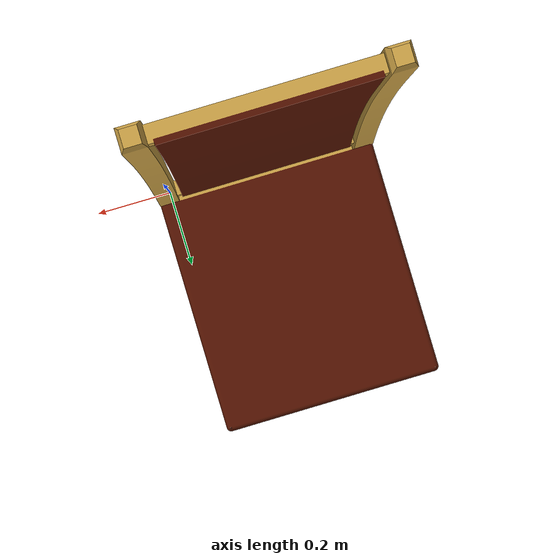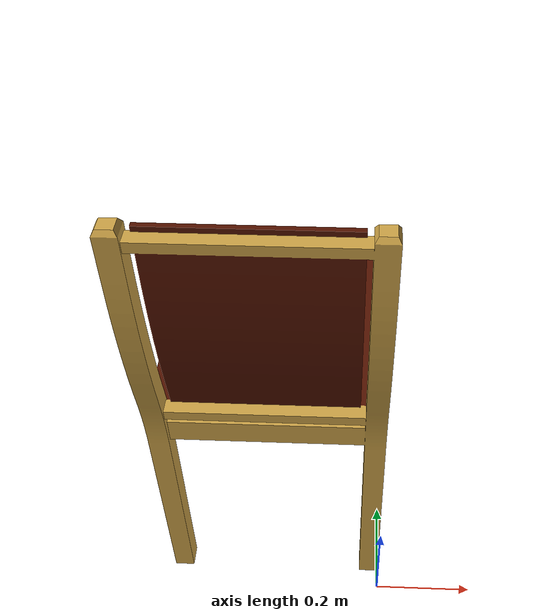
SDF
<?xml version="1.0" ?>
<sdf version="1.5">
  <model name="mj_chair">
    <static>true</static>
     <link name="link">
      <visual name="mj_chair_visual">
        <geometry>
          <mesh>
            <uri>model://mj_chair/meshes/mj_chair.dae</uri>
          </mesh>
        </geometry>
      </visual>
      <collision name="mj_chair_collision">
        <geometry>
          <mesh>
            <uri>model://mj_chair/meshes/mj_chair.dae</uri>
          </mesh>
        </geometry>
      </collision>

    </link>
  </model>

</sdf>
